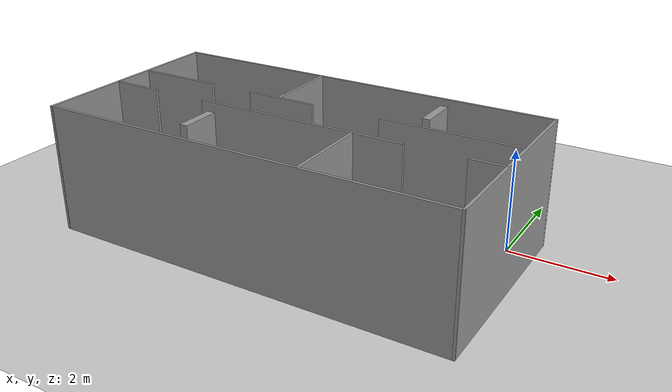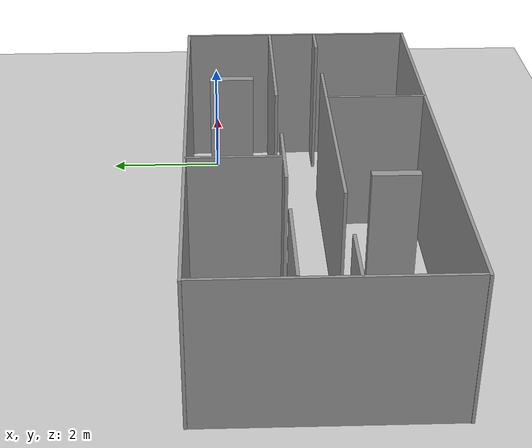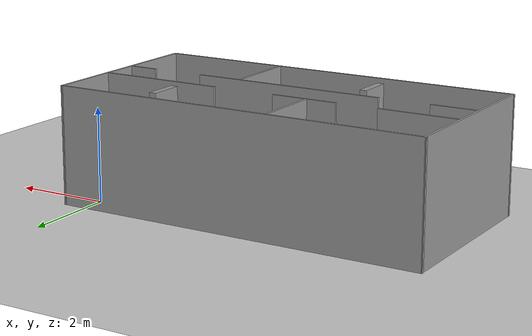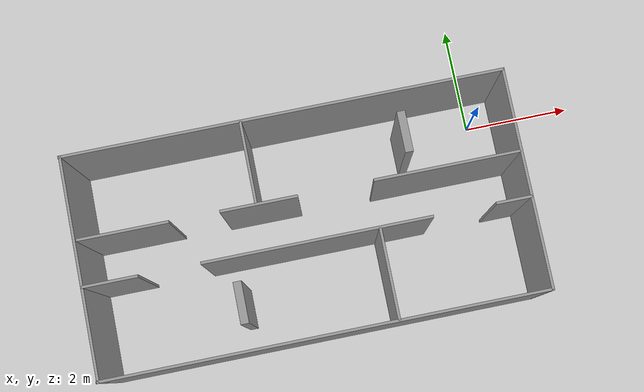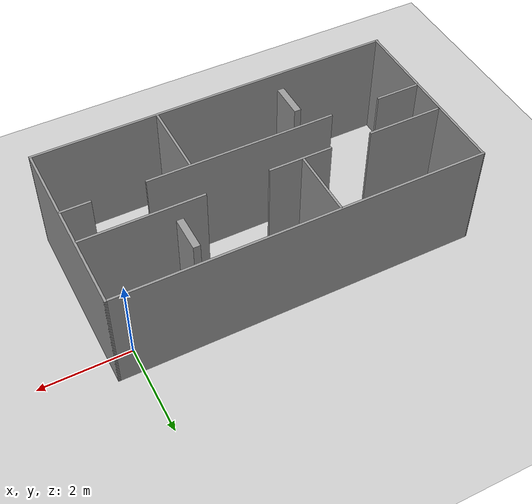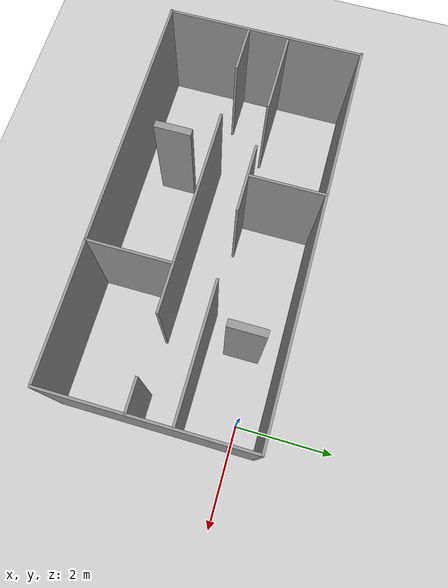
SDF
<sdf version="1.7">
 <world name="default">
  <light name="sun" type="directional">
   <pose>0 0 10 0 -0 0</pose>
   <diffuse>0.8 0.8 0.8 1</diffuse>
   <specular>0.2 0.2 0.2 1</specular>
   <attenuation>
    <range>1000</range>
    <constant>0.9</constant>
    <linear>0.01</linear>
    <quadratic>0.001</quadratic>
   </attenuation>
   <direction>-0.5 0.1 -0.9</direction>
   <spot><inner_angle>0</inner_angle><outer_angle>0</outer_angle><falloff>0</falloff></spot>
  </light>
  <model name="ground_plane">
   <static>1</static>
   <link name="link">
    <collision name="collision">
     <geometry><plane><normal>0 0 1</normal><size>100 100</size></plane></geometry>
     <surface>
      <contact><collide_bitmask>65535</collide_bitmask></contact>
      <friction><ode><mu>100</mu><mu2>50</mu2></ode></friction>
     </surface>
    </collision>
    <visual name="visual">
     <cast_shadows>0</cast_shadows>
     <geometry><plane><normal>0 0 1</normal><size>100 100</size></plane></geometry>
     <material>
      <script><uri>file://media/materials/scripts/gazebo.material</uri><name>Gazebo/Grey</name></script>
     </material>
    </visual>
   </link>
  </model>
  <gravity>0 0 -9.8</gravity>
  <magnetic_field>6e-06 2.3e-05 -4.2e-05</magnetic_field>
  <atmosphere type="adiabatic"/>
  <physics type="ode">
   <max_step_size>0.001</max_step_size>
   <real_time_factor>1</real_time_factor>
   <real_time_update_rate>1000</real_time_update_rate>
  </physics>
  <scene><ambient>0.4 0.4 0.4 1</ambient><background>0.7 0.7 0.7 1</background><shadows>1</shadows></scene>
  <spherical_coordinates>
   <surface_model>EARTH_WGS84</surface_model>
   <latitude_deg>0</latitude_deg>
   <longitude_deg>0</longitude_deg>
   <elevation>0</elevation>
   <heading_deg>0</heading_deg>
  </spherical_coordinates>
  <model name="Untitled">
   <pose>-3.5124 -1.5026 0 0 -0 0</pose>
   <link name="Wall_0">
    <collision name="Wall_0_Collision">
     <geometry><box><size>8.07479 0.05 2.5</size></box></geometry>
     <pose>0 0 1.25 0 -0 0</pose>
    </collision>
    <visual name="Wall_0_Visual">
     <pose>0 0 1.25 0 -0 0</pose>
     <geometry><box><size>8.07479 0.05 2.5</size></box></geometry>
     <material>
      <script><uri>file://media/materials/scripts/gazebo.material</uri><name>Gazebo/Grey</name></script>
      <ambient>1 1 1 1</ambient>
     </material>
     <meta><layer>0</layer></meta>
    </visual>
    <pose>0 2 0 0 -0 0.000649</pose>
   </link>
   <link name="Wall_11">
    <collision name="Wall_11_Collision">
     <geometry><box><size>1.4 0.05 2.5</size></box></geometry>
     <pose>0 0 1.25 0 -0 0</pose>
    </collision>
    <visual name="Wall_11_Visual">
     <pose>0 0 1.25 0 -0 0</pose>
     <geometry><box><size>1.4 0.05 2.5</size></box></geometry>
     <material>
      <script><uri>file://media/materials/scripts/gazebo.material</uri><name>Gazebo/Grey</name></script>
      <ambient>1 1 1 1</ambient>
     </material>
     <meta><layer>0</layer></meta>
    </visual>
    <pose>-0.714165 0.483847 0 0 -0 0</pose>
   </link>
   <link name="Wall_13">
    <collision name="Wall_13_Collision">
     <geometry><box><size>1.65 0.05 2.5</size></box></geometry>
     <pose>0 0 1.25 0 -0 0</pose>
    </collision>
    <visual name="Wall_13_Visual">
     <pose>0 0 1.25 0 -0 0</pose>
     <geometry><box><size>1.65 0.05 2.5</size></box></geometry>
     <material>
      <script><uri>file://media/materials/scripts/gazebo.material</uri><name>Gazebo/Grey</name></script>
      <ambient>1 1 1 1</ambient>
     </material>
     <meta><layer>0</layer></meta>
    </visual>
    <pose>-3.1396 0.484104 0 0 -0 0</pose>
   </link>
   <link name="Wall_15">
    <collision name="Wall_15_Collision">
     <geometry><box><size>2.65 0.05 2.5</size></box></geometry>
     <pose>0 0 1.25 0 -0 0</pose>
    </collision>
    <visual name="Wall_15_Visual">
     <pose>0 0 1.25 0 -0 0</pose>
     <geometry><box><size>2.65 0.05 2.5</size></box></geometry>
     <material>
      <script><uri>file://media/materials/scripts/gazebo.material</uri><name>Gazebo/Grey</name></script>
      <ambient>1 1 1 1</ambient>
     </material>
     <meta><layer>0</layer></meta>
    </visual>
    <pose>2.67342 0.494604 0 0 -0 0</pose>
   </link>
   <link name="Wall_17">
    <collision name="Wall_17_Collision">
     <geometry><box><size>0.75 0.15 2.5</size></box></geometry>
     <pose>0 0 1.25 0 -0 0</pose>
    </collision>
    <visual name="Wall_17_Visual">
     <pose>0 0 1.25 0 -0 0</pose>
     <geometry><box><size>0.75 0.15 2.5</size></box></geometry>
     <material>
      <script><uri>file://media/materials/scripts/gazebo.material</uri><name>Gazebo/Grey</name></script>
      <ambient>1 1 1 1</ambient>
     </material>
     <meta><layer>0</layer></meta>
    </visual>
    <pose>2.0684 1.23943 0 0 -0 -1.5708</pose>
   </link>
   <link name="Wall_19">
    <collision name="Wall_19_Collision">
     <geometry><box><size>4.14957 0.05 2.5</size></box></geometry>
     <pose>0 0 1.25 0 -0 0</pose>
    </collision>
    <visual name="Wall_19_Visual">
     <pose>0 0 1.25 0 -0 0</pose>
     <geometry><box><size>4.14957 0.05 2.5</size></box></geometry>
     <material>
      <script><uri>file://media/materials/scripts/gazebo.material</uri><name>Gazebo/Grey</name></script>
      <ambient>1 1 1 1</ambient>
     </material>
     <meta><layer>0</layer></meta>
    </visual>
    <pose>0.171396 -0.342396 0 0 -0 0</pose>
   </link>
   <link name="Wall_21">
    <collision name="Wall_21_Collision">
     <geometry><box><size>1.6498 0.05 2.5</size></box></geometry>
     <pose>0 0 1.25 0 -0 0</pose>
    </collision>
    <visual name="Wall_21_Visual">
     <pose>0 0 1.25 0 -0 0</pose>
     <geometry><box><size>1.6498 0.05 2.5</size></box></geometry>
     <material>
      <script><uri>file://media/materials/scripts/gazebo.material</uri><name>Gazebo/Grey</name></script>
      <ambient>1 1 1 1</ambient>
     </material>
     <meta><layer>0</layer></meta>
    </visual>
    <pose>1.2884 -1.1784 0 0 -0 -1.5708</pose>
   </link>
   <link name="Wall_23">
    <collision name="Wall_23_Collision">
     <geometry><box><size>0.65 0.05 2.5</size></box></geometry>
     <pose>0 0 1.25 0 -0 0</pose>
    </collision>
    <visual name="Wall_23_Visual">
     <pose>0 0 1.25 0 -0 0</pose>
     <geometry><box><size>0.65 0.05 2.5</size></box></geometry>
     <material>
      <script><uri>file://media/materials/scripts/gazebo.material</uri><name>Gazebo/Grey</name></script>
      <ambient>1 1 1 1</ambient>
     </material>
     <meta><layer>0</layer></meta>
    </visual>
    <pose>3.69372 -0.33582 0 0 -0 0</pose>
   </link>
   <link name="Wall_25">
    <collision name="Wall_25_Collision">
     <geometry><box><size>1 0.05 2.5</size></box></geometry>
     <pose>0 0 1.25 0 -0 0</pose>
    </collision>
    <visual name="Wall_25_Visual">
     <pose>0 0 1.25 0 -0 0</pose>
     <geometry><box><size>1 0.05 2.5</size></box></geometry>
     <material>
      <script><uri>file://media/materials/scripts/gazebo.material</uri><name>Gazebo/Grey</name></script>
      <ambient>1 1 1 1</ambient>
     </material>
     <meta><layer>0</layer></meta>
    </visual>
    <pose>-3.5106 -0.344396 0 0 -0 0</pose>
   </link>
   <link name="Wall_27">
    <collision name="Wall_27_Collision">
     <geometry><box><size>0.75 0.15 2.5</size></box></geometry>
     <pose>0 0 1.25 0 -0 0</pose>
    </collision>
    <visual name="Wall_27_Visual">
     <pose>0 0 1.25 0 -0 0</pose>
     <geometry><box><size>0.75 0.15 2.5</size></box></geometry>
     <material>
      <script><uri>file://media/materials/scripts/gazebo.material</uri><name>Gazebo/Grey</name></script>
      <ambient>1 1 1 1</ambient>
     </material>
     <meta><layer>0</layer></meta>
    </visual>
    <pose>-1.34365 -1.1543 0 0 -0 -1.5708</pose>
   </link>
   <link name="Wall_4">
    <collision name="Wall_4_Collision">
     <geometry><box><size>4.05 0.05 2.5</size></box></geometry>
     <pose>0 0 1.25 0 -0 0</pose>
    </collision>
    <visual name="Wall_4_Visual">
     <pose>0 0 1.25 0 -0 0</pose>
     <geometry><box><size>4.05 0.05 2.5</size></box></geometry>
     <material>
      <script><uri>file://media/materials/scripts/gazebo.material</uri><name>Gazebo/Grey</name></script>
      <ambient>1 1 1 1</ambient>
     </material>
     <meta><layer>0</layer></meta>
    </visual>
    <pose>4.0124 0.002604 0 0 -0 -1.5708</pose>
   </link>
   <link name="Wall_6">
    <collision name="Wall_6_Collision">
     <geometry><box><size>8.07479 0.05 2.5</size></box></geometry>
     <pose>0 0 1.25 0 -0 0</pose>
    </collision>
    <visual name="Wall_6_Visual">
     <pose>0 0 1.25 0 -0 0</pose>
     <geometry><box><size>8.07479 0.05 2.5</size></box></geometry>
     <material>
      <script><uri>file://media/materials/scripts/gazebo.material</uri><name>Gazebo/Grey</name></script>
      <ambient>1 1 1 1</ambient>
     </material>
     <meta><layer>0</layer></meta>
    </visual>
    <pose>0 -2 0 0 -0 -3.14094</pose>
   </link>
   <link name="Wall_7">
    <collision name="Wall_7_Collision">
     <geometry><box><size>4.05 0.05 2.5</size></box></geometry>
     <pose>0 0 1.25 0 -0 0</pose>
    </collision>
    <visual name="Wall_7_Visual">
     <pose>0 0 1.25 0 -0 0</pose>
     <geometry><box><size>4.05 0.05 2.5</size></box></geometry>
     <material>
      <script><uri>file://media/materials/scripts/gazebo.material</uri><name>Gazebo/Grey</name></script>
      <ambient>1 1 1 1</ambient>
     </material>
     <meta><layer>0</layer></meta>
    </visual>
    <pose>-4.00239 -0.002604 0 0 -0 1.5708</pose>
   </link>
   <link name="Wall_9">
    <collision name="Wall_9_Collision">
     <geometry><box><size>1.5 0.05 2.5</size></box></geometry>
     <pose>0 0 1.25 0 -0 0</pose>
    </collision>
    <visual name="Wall_9_Visual">
     <pose>0 0 1.25 0 -0 0</pose>
     <geometry><box><size>1.5 0.05 2.5</size></box></geometry>
     <material>
      <script><uri>file://media/materials/scripts/gazebo.material</uri><name>Gazebo/Grey</name></script>
      <ambient>1 1 1 1</ambient>
     </material>
     <meta><layer>0</layer></meta>
    </visual>
    <pose>-0.761604 1.2506 0 0 -0 -1.5708</pose>
   </link>
   <static>1</static>
  </model>
 </world>
</sdf>
